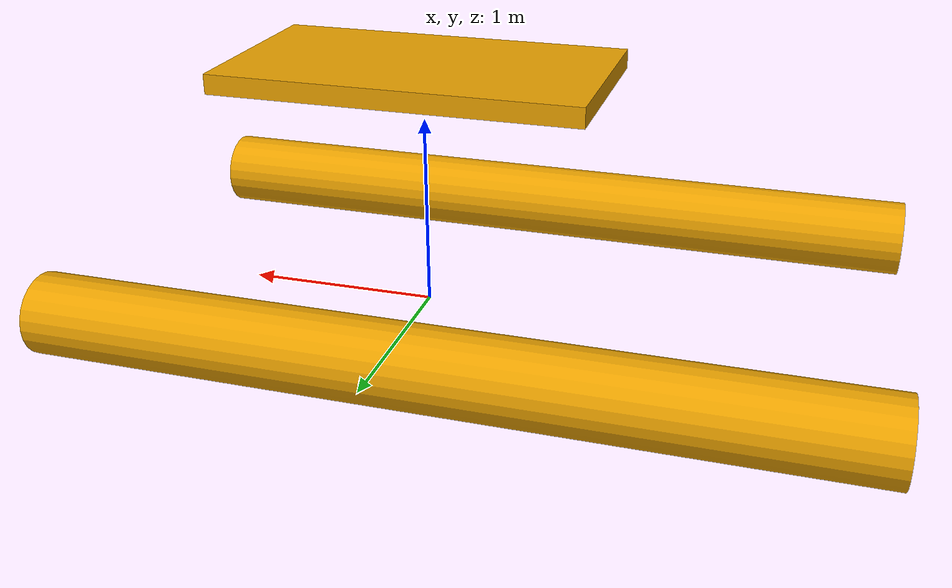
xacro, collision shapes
<?xml version="1.0"?>
<!-- Minimal WAM-V — no artificial links, pure free body for DART stability -->
<robot xmlns:xacro="http://www.ros.org/wiki/xacro" name="wamv_light">
  <xacro:arg name="namespace" default="wamv"/>
  <xacro:property name="namespace" value="$(arg namespace)" scope="global"/>

  <xacro:property name="wamv_mesh" value="$(find wamv_description)/models/WAM-V-Base/mesh/WAM-V-Base.dae"/>
  <xacro:property name="tex_dir" value="$(find wamv_description)/models/WAM-V-Base/mesh"/>

  <link name="${namespace}/base_link">
    <visual>
      <geometry><mesh filename="${wamv_mesh}"/></geometry>
    </visual>
    <collision name="float_left">
      <origin xyz="-0.4 1.03 0.2" rpy="0 1.57 0"/>
      <geometry><cylinder length="4" radius="0.2"/></geometry>
    </collision>
    <collision name="float_right">
      <origin xyz="-0.4 -1.03 0.2" rpy="0 1.57 0"/>
      <geometry><cylinder length="4" radius="0.2"/></geometry>
    </collision>
    <collision name="deck">
      <origin xyz="0 0 1.25" rpy="0 0 0"/>
      <geometry><box size="1.85 1 0.1"/></geometry>
    </collision>
    <inertial>
      <mass value="180.0"/>
      <inertia ixx="120" ixy="0" ixz="0" iyy="393" iyz="0" izz="446"/>
    </inertial>
  </link>

  <gazebo reference="${namespace}/base_link">
    <enable_wind>true</enable_wind>
    <visual>
      <material>
        <diffuse>1 1 1</diffuse>
        <specular>1 1 1</specular>
        <pbr><metal>
          <albedo_map>file://${tex_dir}/WAM-V_Albedo.png</albedo_map>
          <normal_map>file://${tex_dir}/WAM-V_Normal.png</normal_map>
          <roughness_map>file://${tex_dir}/WAM-V_Roughness.png</roughness_map>
          <metalness_map>file://${tex_dir}/WAM-V_Metalness.png</metalness_map>
        </metal></pbr>
      </material>
    </visual>
  </gazebo>

  <gazebo>
    <plugin filename="libSurface.so" name="vrx::S1">
      <link_name>${namespace}/base_link</link_name>
      <hull_length>4.9</hull_length><hull_radius>0.213</hull_radius><fluid_level>0</fluid_level>
      <points><point>0.6 1.03 0</point><point>-1.4 1.03 0</point></points>
      <wavefield>
        <topic>/vrx/wavefield/parameters</topic>
        <wave><model>PMS</model><amplitude>1.6</amplitude><period>7.0</period><gain>0.7</gain>
             <steepness>0.5</steepness><number>5</number><scale>1.3</scale><angle>0.3</angle><tau>0.1</tau></wave>
      </wavefield>
    </plugin>
    <plugin filename="libSurface.so" name="vrx::S2">
      <link_name>${namespace}/base_link</link_name>
      <hull_length>4.9</hull_length><hull_radius>0.213</hull_radius><fluid_level>0</fluid_level>
      <points><point>0.6 -1.03 0</point><point>-1.4 -1.03 0</point></points>
      <wavefield>
        <topic>/vrx/wavefield/parameters</topic>
        <wave><model>PMS</model><amplitude>1.6</amplitude><period>7.0</period><gain>0.7</gain>
             <steepness>0.5</steepness><number>5</number><scale>1.3</scale><angle>0.3</angle><tau>0.1</tau></wave>
      </wavefield>
    </plugin>
    <plugin filename="libSimpleHydrodynamics.so" name="vrx::Hydro">
      <link_name>${namespace}/base_link</link_name>
      <xDotU>0</xDotU><yDotV>0</yDotV><nDotR>0</nDotR>
      <xU>100</xU><xUU>150</xUU><yV>100</yV><yVV>100</yVV>
      <zW>500</zW><kP>300</kP><kPP>600</kPP><mQ>900</mQ><mQQ>900</mQQ><nR>800</nR><nRR>800</nRR>
    </plugin>
    <plugin filename="libUSVWind.so" name="vrx::Wind">
      <wind_obj><name>wamv</name><link_name>${namespace}/base_link</link_name><coeff_vector>0.5 0.5 0.33</coeff_vector></wind_obj>
      <wind_direction>240</wind_direction><wind_mean_velocity>12.0</wind_mean_velocity>
      <var_wind_gain_constants>0.5</var_wind_gain_constants><var_wind_time_constants>2</var_wind_time_constants>
    </plugin>
  </gazebo>
</robot>
